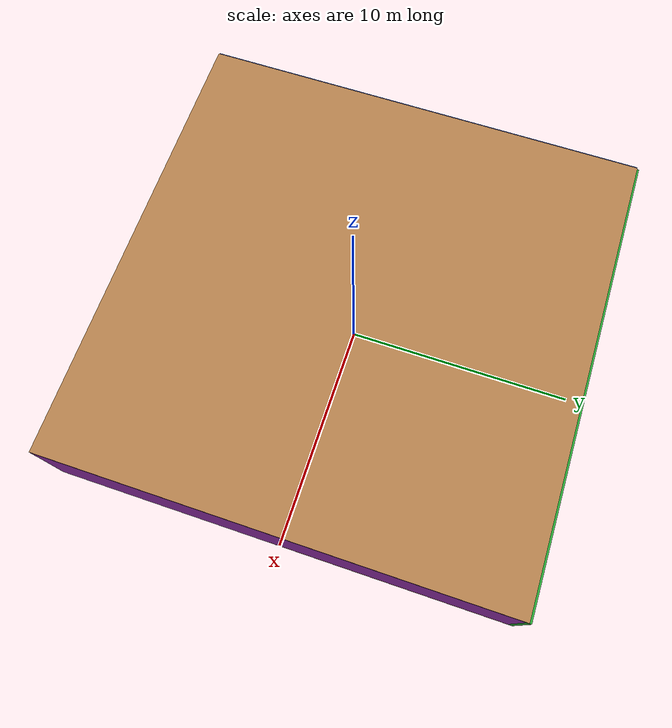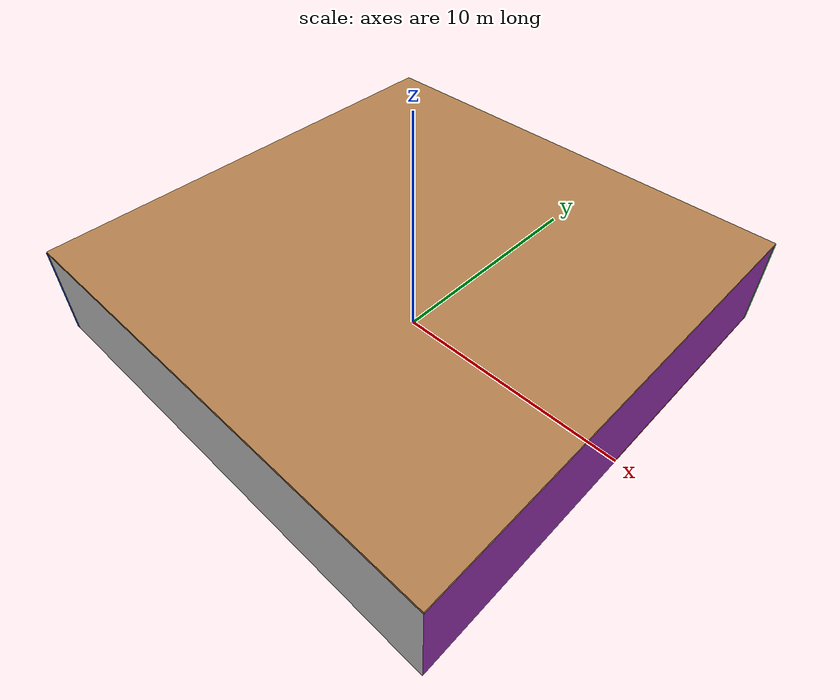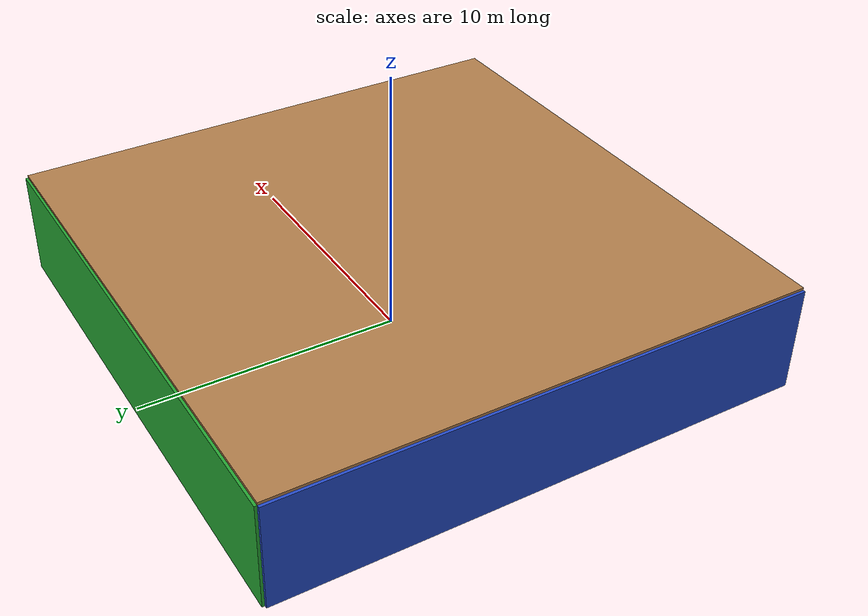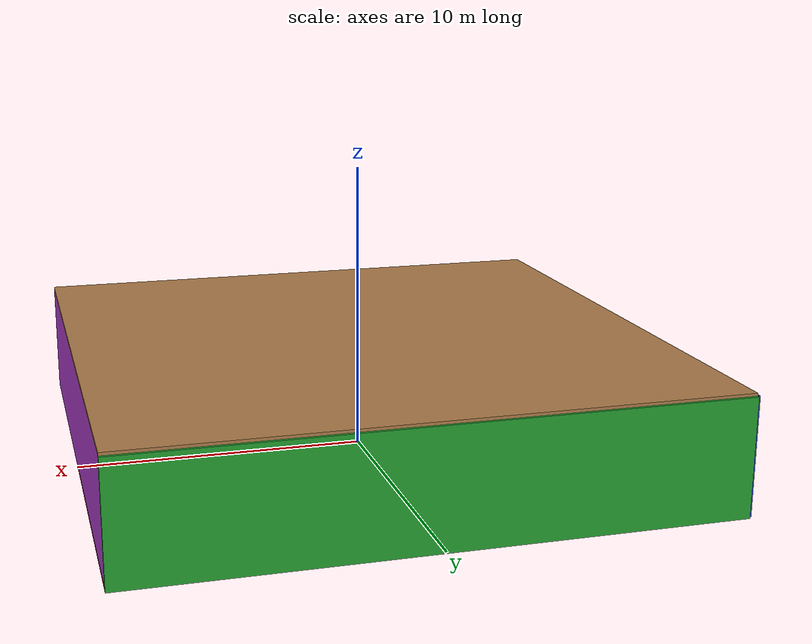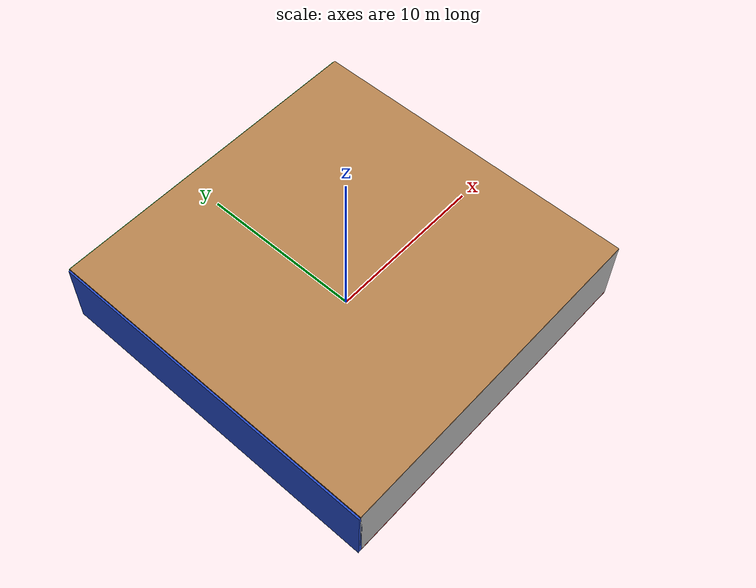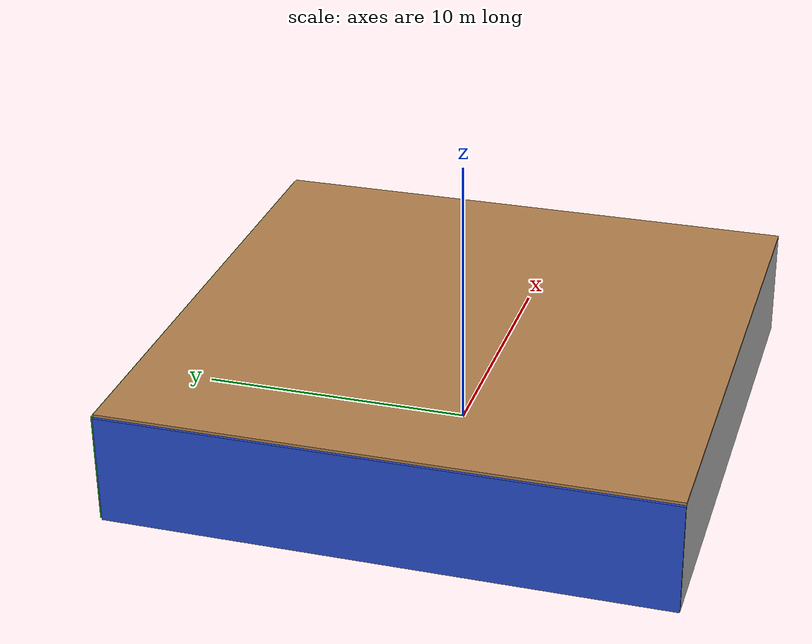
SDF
<sdf version="1.4">
 <world name="default">
  <physics type="ode">
   <max_step_size>0.001</max_step_size>
   <real_time_factor>1</real_time_factor>
   <real_time_update_rate>1000</real_time_update_rate>
   <gravity>0 0 -9.8</gravity>
  </physics>
  <scene><ambient>0.4 0.4 0.4 1</ambient><background>0.7 0.7 0.7 1</background><shadows>1</shadows></scene>
  <model name="Surrounding">
   <static>1</static>
   <link name="Ceiling">
    <collision name="Ceiling_Collision"><geometry><box><size>20 20 0.1</size></box></geometry></collision>
    <visual name="Ceiling_Visual">
     <geometry><box><size>20 20 0.1</size></box></geometry>
     <material>
      <script><uri>file://media/materials/scripts/gazebo.material</uri><name>Gazebo/WoodPallet</name></script>
     </material>
    </visual>
    <pose>0 0 4.05 0 0 0</pose>
   </link>
   <link name="Wall_South">
    <collision name="Wall_South_Collision">
     <geometry><box><size>20 0 4</size></box></geometry>
     <pose>0 0 2 0 -0 0</pose>
    </collision>
    <visual name="Wall_South_Visual">
     <pose>0 0 2 0 -0 0</pose>
     <geometry><box><size>20 0 4</size></box></geometry>
     <material>
      <script><uri>file://media/materials/scripts/gazebo.material</uri><name>Gazebo/Pioneer2Body</name></script>
     </material>
    </visual>
    <velocity_decay><linear>0</linear><angular>0</angular></velocity_decay>
    <pose>0 -10 0 0 -0 0</pose>
   </link>
   <link name="Wall_East">
    <collision name="Wall_21_Collision">
     <geometry><box><size>20 0 4</size></box></geometry>
     <pose>0 0 2 0 -0 0</pose>
    </collision>
    <visual name="Wall_21_Visual">
     <pose>0 0 2 0 -0 0</pose>
     <geometry><box><size>20 0 4</size></box></geometry>
     <material>
      <script><uri>file://media/materials/scripts/gazebo.material</uri><name>Gazebo/Purple</name></script>
     </material>
    </visual>
    <velocity_decay><linear>0</linear><angular>0</angular></velocity_decay>
    <pose>10 0 0 0 -0 1.5708</pose>
   </link>
   <link name="Wall_North">
    <collision name="Wall_22_Collision">
     <geometry><box><size>20 0.2 4</size></box></geometry>
     <pose>0 0 2 0 -0 0</pose>
    </collision>
    <visual name="Wall_22_Visual">
     <pose>0 0 2 0 -0 0</pose>
     <geometry><box><size>20 0.2 4</size></box></geometry>
     <material>
      <script><uri>file://media/materials/scripts/gazebo.material</uri><name>Gazebo/GreenGlow</name></script>
     </material>
    </visual>
    <velocity_decay><linear>0</linear><angular>0</angular></velocity_decay>
    <pose>0 10 0 0 -0 0</pose>
   </link>
   <link name="Wall_West">
    <collision name="Wall_23_Collision">
     <geometry><box><size>20 0.2 4</size></box></geometry>
     <pose>0 0 2 0 -0 0</pose>
    </collision>
    <visual name="Wall_23_Visual">
     <pose>0 0 2 0 -0 0</pose>
     <geometry><box><size>20 0.2 4</size></box></geometry>
     <material>
      <script><uri>file://media/materials/scripts/gazebo.material</uri><name>Gazebo/BlueLaser</name></script>
     </material>
    </visual>
    <velocity_decay><linear>0</linear><angular>0</angular></velocity_decay>
    <pose>-10 0 0 0 0 -1.5708</pose>
   </link>
   <link name="Ground_link">
    <collision name="collision">
     <pose>0 0 .05 0 -0 0</pose>
     <geometry><box><size>20 20 0.1</size></box></geometry>
    </collision>
    <visual name="visual">
     <pose>0 0 .05 0 -0 0</pose>
     <geometry><box><size>20 20 0.1</size></box></geometry>
     <material>
      <script><uri>file://media/materials/scripts/gazebo.material</uri><name>Gazebo/Red</name></script>
     </material>
    </visual>
   </link>
   <static>1</static>
  </model>
  <spherical_coordinates>
   <surface_model>EARTH_WGS84</surface_model>
   <latitude_deg>0</latitude_deg>
   <longitude_deg>0</longitude_deg>
   <elevation>0</elevation>
   <heading_deg>0</heading_deg>
  </spherical_coordinates>
  <light name="lightball_0" type="diffuse">
   <diffuse>0.8 0.8 0.8 1</diffuse>
   <specular>0.2 0.2 0.2 1</specular>
   <attenuation>
    <range>100</range>
    <constant>0.7</constant>
    <linear>0.01</linear>
    <quadratic>0.001</quadratic>
   </attenuation>
   <direction>-0.5 0.1 -0.9</direction>
   <pose>4.89899299603 2.65949119368 0.595149403697 0 0 0</pose>
  </light>
  <light name="lightball_1" type="diffuse">
   <diffuse>0.8 0.8 0.8 1</diffuse>
   <specular>0.2 0.2 0.2 1</specular>
   <attenuation>
    <range>100</range>
    <constant>0.7</constant>
    <linear>0.01</linear>
    <quadratic>0.001</quadratic>
   </attenuation>
   <direction>-0.5 0.1 -0.9</direction>
   <pose>3.43382008483 7.38105279979 1.57064881964 0 0 0</pose>
  </light>
  <light name="lightball_2" type="diffuse">
   <diffuse>0.8 0.8 0.8 1</diffuse>
   <specular>0.2 0.2 0.2 1</specular>
   <attenuation>
    <range>100</range>
    <constant>0.7</constant>
    <linear>0.01</linear>
    <quadratic>0.001</quadratic>
   </attenuation>
   <direction>-0.5 0.1 -0.9</direction>
   <pose>1.0022817653 3.94665449045 2.61427471992 0 0 0</pose>
  </light>
  <light name="lightball_3" type="diffuse">
   <diffuse>0.8 0.8 0.8 1</diffuse>
   <specular>0.2 0.2 0.2 1</specular>
   <attenuation>
    <range>100</range>
    <constant>0.7</constant>
    <linear>0.01</linear>
    <quadratic>0.001</quadratic>
   </attenuation>
   <direction>-0.5 0.1 -0.9</direction>
   <pose>-2.89323906939 -1.01264520983 2.88568186044 0 0 0</pose>
  </light>
  <light name="lightball_4" type="diffuse">
   <diffuse>0.8 0.8 0.8 1</diffuse>
   <specular>0.2 0.2 0.2 1</specular>
   <attenuation>
    <range>100</range>
    <constant>0.7</constant>
    <linear>0.01</linear>
    <quadratic>0.001</quadratic>
   </attenuation>
   <direction>-0.5 0.1 -0.9</direction>
   <pose>-6.73598249933 8.19278297204 1.30346665287 0 0 0</pose>
  </light>
  <light name="lightball_5" type="diffuse">
   <diffuse>0.8 0.8 0.8 1</diffuse>
   <specular>0.2 0.2 0.2 1</specular>
   <attenuation>
    <range>100</range>
    <constant>0.7</constant>
    <linear>0.01</linear>
    <quadratic>0.001</quadratic>
   </attenuation>
   <direction>-0.5 0.1 -0.9</direction>
   <pose>4.68091802446 8.53777494654 1.65088314963 0 0 0</pose>
  </light>
  <light name="lightball_6" type="diffuse">
   <diffuse>0.8 0.8 0.8 1</diffuse>
   <specular>0.2 0.2 0.2 1</specular>
   <attenuation>
    <range>100</range>
    <constant>0.7</constant>
    <linear>0.01</linear>
    <quadratic>0.001</quadratic>
   </attenuation>
   <direction>-0.5 0.1 -0.9</direction>
   <pose>7.71768630019 -6.00519348742 3.85108986525 0 0 0</pose>
  </light>
  <light name="lightball_7" type="diffuse">
   <diffuse>0.8 0.8 0.8 1</diffuse>
   <specular>0.2 0.2 0.2 1</specular>
   <attenuation>
    <range>100</range>
    <constant>0.7</constant>
    <linear>0.01</linear>
    <quadratic>0.001</quadratic>
   </attenuation>
   <direction>-0.5 0.1 -0.9</direction>
   <pose>-1.43614112374 -3.68026573559 3.13497224321 0 0 0</pose>
  </light>
  <light name="lightball_8" type="diffuse">
   <diffuse>0.8 0.8 0.8 1</diffuse>
   <specular>0.2 0.2 0.2 1</specular>
   <attenuation>
    <range>100</range>
    <constant>0.7</constant>
    <linear>0.01</linear>
    <quadratic>0.001</quadratic>
   </attenuation>
   <direction>-0.5 0.1 -0.9</direction>
   <pose>6.28220543655 8.36033797385 2.56454316156 0 0 0</pose>
  </light>
  <include>
   <uri>model://textured_shapes</uri>
   <pose>-7.31955121466 -2.55430370265 0 0 0 1.8609285897</pose>
  </include>
  <include>
   <uri>model://textured_shapes</uri>
   <pose>-4.28955150467 -5.15498729726 0 0 0 1.71165159326</pose>
  </include>
  <include><uri>model://cabinet</uri><pose>-4.14579762081 4.51087385185 0 0 0 2.34077055328</pose></include>
  <include>
   <uri>model://robocup_3Dsim_goal</uri>
   <pose>2.50358523389 1.99485977518 0 0 0 0.553153514138</pose>
  </include>
  <include><uri>model://cabinet</uri><pose>7.55019616918 -3.5343867268 0 0 0 2.70430512579</pose></include>
 </world>
</sdf>

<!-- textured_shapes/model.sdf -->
<sdf version="1.6">
  <model name="textured_shapes">
    <pose>0 0 0.5 0 0 0</pose>
    <link name="box">
      <pose>0 -1.5 0 0 0 0</pose>
      <collision name="collision">
        <geometry>
          <box>
            <size>1 1 1</size>
          </box>
        </geometry>
      </collision>
      <visual name="visual">
        <geometry>
          <box>
            <size>1 1 1</size>
          </box>
        </geometry>
        <material>
          <script>
            <uri>model://../model_source/models/textured_shapes/materials/scripts</uri>
            <uri>model://../model_source/models/textured_shapes/materials/textures</uri>
            <name>TexturedShape/Squares</name>
          </script>
        </material>
      </visual>
    </link>
    <link name="sphere">
      <collision name="collision">
        <geometry>
          <sphere>
            <radius>0.5</radius>
          </sphere>
        </geometry>
      </collision>
      <visual name="visual">
        <geometry>
          <sphere>
            <radius>0.5</radius>
          </sphere>
        </geometry>
        <material>
          <script>
            <uri>model://../model_source/models/textured_shapes/materials/scripts</uri>
            <uri>model://../model_source/models/textured_shapes/materials/textures</uri>
            <name>TexturedShape/Squares</name>
          </script>
        </material>
      </visual>
    </link>
    <link name="cylinder">
      <pose>0 1.5 0 0 0 0</pose>
      <collision name="collision">
        <geometry>
          <cylinder>
            <radius>0.5</radius>
            <length>1</length>
          </cylinder>
        </geometry>
      </collision>
      <visual name="visual">
        <geometry>
          <cylinder>
            <radius>0.5</radius>
            <length>1</length>
          </cylinder>
        </geometry>
        <material>
          <script>
            <uri>model://../model_source/models/textured_shapes/materials/scripts</uri>
            <uri>model://../model_source/models/textured_shapes/materials/textures</uri>
            <name>TexturedShape/Squares</name>
          </script>
        </material>
      </visual>
    </link>
  </model>
</sdf>

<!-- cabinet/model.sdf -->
<sdf version="1.5">
  <model name="cabinet">
    <static>true</static>
    <link name="cabinet_bottom_plate">
      <inertial>
        <pose>0 0 -1 0 0 0</pose>
        <inertia>
          <ixx>2.050000</ixx>
          <ixy>0</ixy>
          <ixz>0</ixz>
          <iyy>2.050000</iyy>
          <iyz>0</iyz>
          <izz>2.050000</izz>
        </inertia>
        <mass>25.000000</mass>
      </inertial>
      <collision name="cabinet_bottom_plate_geom">
        <pose>0 0 0.010000 0 0 0</pose>
        <geometry>
          <box>
            <size>0.450000 0.450000 0.020000</size>
          </box>
        </geometry>
      </collision>
      <visual name="cabinet_bottom_plate_geom_visual">
        <pose>0 0 0.010000 0 0 0</pose>
        <geometry>
          <box>
            <size>0.450000 0.450000 0.020000</size>
          </box>
        </geometry>
        <material>
          <script>
            <uri>model://media/materials/scripts/gazebo.material</uri>
            <name>Gazebo/Wood</name>
          </script>
        </material>
      </visual>
      <collision name="cabinet_bottom_plate_geom_cabinet_back_plate">
        <pose>0.235000 0 0.510000 0 0 0</pose>
        <geometry>
          <box>
            <size>0.020000 0.450000 1.020000</size>
          </box>
        </geometry>
      </collision>
      <visual name="cabinet_bottom_plate_geom_cabinet_back_plate_visual">
        <pose>0.235000 0 0.510000 0 0 0</pose>
        <geometry>
          <box>
            <size>0.020000 0.450000 1.020000</size>
          </box>
        </geometry>
        <material>
          <script>
            <uri>model://media/materials/scripts/gazebo.material</uri>
            <name>Gazebo/Wood</name>
          </script>
        </material>
      </visual>
      <collision name="cabinet_bottom_plate_geom_cabinet_left_plate">
        <pose>0 0.235000 0.510000 0 0 0</pose>
        <geometry>
          <box>
            <size>0.450000 0.020000 1.020000</size>
          </box>
        </geometry>
      </collision>
      <visual name="cabinet_bottom_plate_geom_cabinet_left_plate_visual">
        <pose>0 0.235000 0.510000 0 0 0</pose>
        <geometry>
          <box>
            <size>0.450000 0.020000 1.020000</size>
          </box>
        </geometry>
        <material>
          <script>
            <uri>model://media/materials/scripts/gazebo.material</uri>
            <name>Gazebo/Wood</name>
          </script>
        </material>
      </visual>
      <collision name="cabinet_bottom_plate_geom_cabinet_middle_plate">
        <pose>0 0 0.510000 0 0 0</pose>
        <geometry>
          <box>
            <size>0.450000 0.450000 0.020000</size>
          </box>
        </geometry>
      </collision>
      <visual name="cabinet_bottom_plate_geom_cabinet_middle_plate_visual">
        <pose>0 0 0.510000 0 0 0</pose>
        <geometry>
          <box>
            <size>0.450000 0.450000 0.020000</size>
          </box>
        </geometry>
        <material>
          <script>
            <uri>model://media/materials/scripts/gazebo.material</uri>
            <name>Gazebo/Wood</name>
          </script>
        </material>
      </visual>
      <collision name="cabinet_bottom_plate_geom_cabinet_right_plate">
        <pose>0 -0.235000 0.510000 0 0 0</pose>
        <geometry>
          <box>
            <size>0.450000 0.020000 1.020000</size>
          </box>
        </geometry>
      </collision>
      <visual name="cabinet_bottom_plate_geom_cabinet_right_plate_visual">
        <pose>0 -0.235000 0.510000 0 0 0</pose>
        <geometry>
          <box>
            <size>0.450000 0.020000 1.020000</size>
          </box>
        </geometry>
        <material>
          <script>
            <uri>model://media/materials/scripts/gazebo.material</uri>
            <name>Gazebo/Wood</name>
          </script>
        </material>
      </visual>
      <collision name="cabinet_bottom_plate_geom_cabinet_top_plate">
        <pose>0 0 1.010000 0 0 0</pose>
        <geometry>
          <box>
            <size>0.450000 0.450000 0.020000</size>
          </box>
        </geometry>
      </collision>
      <visual name="cabinet_bottom_plate_geom_cabinet_top_plate_visual">
        <pose>0 0 1.010000 0 0 0</pose>
        <geometry>
          <box>
            <size>0.450000 0.450000 0.020000</size>
          </box>
        </geometry>
        <material>
          <script>
            <uri>model://media/materials/scripts/gazebo.material</uri>
            <name>Gazebo/Wood</name>
          </script>
        </material>
      </visual>
    </link>
  </model>
</sdf>

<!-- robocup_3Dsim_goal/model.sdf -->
<sdf version="1.5">
  <model name="robocup_3d_goal">
    <static>true</static>
    <link name="left_post">
      <pose>0 1.05 0.45 0 0 0</pose>
      <collision name="collision">
        <geometry>
          <cylinder>
            <radius>0.05</radius>
            <length>0.9</length>
          </cylinder>
        </geometry>
      </collision>
      <visual name="visual">
        <geometry>
          <cylinder>
            <radius>0.05</radius>
            <length>0.9</length>
          </cylinder>
        </geometry>
        <material>
          <script>
            <uri>file://media/materials/scripts/gazebo.material</uri>
            <name>Gazebo/ZincYellow</name>
          </script>
        </material>
      </visual>
    </link>
    <link name="left_support_horiz_lower">
      <pose>0.30 1.05 0.01 0 0 0</pose>
      <collision name="collision">
        <geometry>
          <box>
            <size>0.50 0.02 0.02</size>
          </box>
        </geometry>
      </collision>
      <visual name="visual">
        <geometry>
          <box>
            <size>0.50 0.02 0.02</size>
          </box>
        </geometry>
        <material>
          <script>
            <uri>file://media/materials/scripts/gazebo.material</uri>
            <name>Gazebo/White</name>
          </script>
        </material>
      </visual>
    </link>
    <link name="left_support_horiz_upper">
      <pose>0.30 1.05 0.79 0 0 0</pose>
      <collision name="collision">
        <geometry>
          <box>
            <size>0.50 0.02 0.02</size>
          </box>
        </geometry>
      </collision>
      <visual name="visual">
        <geometry>
          <box>
            <size>0.50 0.02 0.02</size>
          </box>
        </geometry>
        <material>
          <script>
            <uri>file://media/materials/scripts/gazebo.material</uri>
            <name>Gazebo/White</name>
          </script>
        </material>
      </visual>
    </link>
    <link name="left_support_vertical">
      <pose>0.56 1.05 0.4 0 1.5708 0</pose>
      <collision name="collision">
        <geometry>
          <box>
            <size>0.80 0.02 0.02</size>
          </box>
        </geometry>
      </collision>
      <visual name="visual">
        <geometry>
          <box>
            <size>0.80 0.02 0.02</size>
          </box>
        </geometry>
        <material>
          <script>
            <uri>file://media/materials/scripts/gazebo.material</uri>
            <name>Gazebo/White</name>
          </script>
        </material>
      </visual>
    </link>
    <link name="right_support_horiz_lower">
      <pose>0.30 -1.05 0.01 0 0 0</pose>
      <collision name="collision">
        <geometry>
          <box>
            <size>0.50 0.02 0.02</size>
          </box>
        </geometry>
      </collision>
      <visual name="visual">
        <geometry>
          <box>
            <size>0.50 0.02 0.02</size>
          </box>
        </geometry>
        <material>
          <script>
            <uri>file://media/materials/scripts/gazebo.material</uri>
            <name>Gazebo/White</name>
          </script>
        </material>
      </visual>
    </link>
    <link name="right_support_horiz_upper">
      <pose>0.30 -1.05 0.79 0 0 0</pose>
      <collision name="collision">
        <geometry>
          <box>
            <size>0.50 0.02 0.02</size>
          </box>
        </geometry>
      </collision>
      <visual name="visual">
        <geometry>
          <box>
            <size>0.50 0.02 0.02</size>
          </box>
        </geometry>
        <material>
          <script>
            <uri>file://media/materials/scripts/gazebo.material</uri>
            <name>Gazebo/White</name>
          </script>
        </material>
      </visual>
    </link>
    <link name="right_support_vertical">
      <pose>0.56 -1.05 0.4 0 1.5708 0</pose>
      <collision name="collision">
        <geometry>
          <box>
            <size>0.80 0.02 0.02</size>
          </box>
        </geometry>
      </collision>
      <visual name="visual">
        <geometry>
          <box>
            <size>0.80 0.02 0.02</size>
          </box>
        </geometry>
        <material>
          <script>
            <uri>file://media/materials/scripts/gazebo.material</uri>
            <name>Gazebo/White</name>
          </script>
        </material>
      </visual>
    </link>
    <link name="center_support_horiz_lower">
      <pose>0.56 0 0.01 0 1.5708 0</pose>
      <collision name="collision">
        <geometry>
          <box>
            <size>0.02 2.08 0.02</size>
          </box>
        </geometry>
      </collision>
      <visual name="visual">
        <geometry>
          <box>
            <size>0.02 2.08 0.02</size>
          </box>
        </geometry>
        <material>
          <script>
            <uri>file://media/materials/scripts/gazebo.material</uri>
            <name>Gazebo/White</name>
          </script>
        </material>
      </visual>
    </link>
    <link name="center_support_horiz_upper">
      <pose>0.56 0 0.79 0 1.5708 0</pose>
      <collision name="collision">
        <geometry>
          <box>
            <size>0.02 2.08 0.02</size>
          </box>
        </geometry>
      </collision>
      <visual name="visual">
        <geometry>
          <box>
            <size>0.02 2.08 0.02</size>
          </box>
        </geometry>
        <material>
          <script>
            <uri>file://media/materials/scripts/gazebo.material</uri>
            <name>Gazebo/White</name>
          </script>
        </material>
      </visual>
    </link>
    <link name="right_post">
      <pose>0 -1.05 0.45 0 0 0</pose>
      <collision name="collision">
        <geometry>
          <cylinder>
            <radius>0.05</radius>
            <length>0.9</length>
          </cylinder>
        </geometry>
      </collision>
      <visual name="visual">
        <geometry>
          <cylinder>
            <radius>0.05</radius>
            <length>0.9</length>
          </cylinder>
        </geometry>
        <material>
          <script>
            <uri>file://media/materials/scripts/gazebo.material</uri>
            <name>Gazebo/ZincYellow</name>
          </script>
        </material>
      </visual>
    </link>
    <link name="crossbar">
      <pose>0 0 0.85 1.57 1.57 0</pose>
      <collision name="collision">
        <geometry>
          <cylinder>
            <radius>0.05</radius>
            <length>2.0</length>
          </cylinder>
        </geometry>
      </collision>
      <visual name="visual">
        <geometry>
          <cylinder>
            <radius>0.05</radius>
            <length>2.0</length>
          </cylinder>
        </geometry>
        <material>
          <script>
            <uri>file://media/materials/scripts/gazebo.material</uri>
            <name>Gazebo/ZincYellow</name>
          </script>
        </material>
      </visual>
    </link>
    <link name="center_net">
      <pose>0.56 0 0.40 0 0 0</pose>
      <collision name="collision">
        <geometry>
          <box>
            <size>0.01 2.1 0.80</size>
          </box>
        </geometry>
      </collision>
      <visual name="visual">
        <geometry>
          <box>
            <size>0.01 2.1 0.80</size>
          </box>
        </geometry>
        <material>
          <script>
            <uri>model://../model_source/models/robocup09_spl_field/materials/scripts/</uri>
            <uri>model://../model_source/models/robocup09_spl_field/materials/textures/</uri>
            <name>RoboCup/Net</name>
          </script>
        </material>
      </visual>
    </link>
    <link name="left_net">
      <pose>0.30 1.05 0.40 0 0 0</pose>
      <collision name="collision">
        <geometry>
          <box>
            <size>0.50 0.01 0.76</size>
          </box>
        </geometry>
      </collision>
      <visual name="visual">
        <geometry>
          <box>
            <size>0.50 0.01 0.76</size>
          </box>
        </geometry>
        <material>
          <script>
            <uri>model://../model_source/models/robocup09_spl_field/materials/scripts/</uri>
            <uri>model://../model_source/models/robocup09_spl_field/materials/textures/</uri>
            <name>RoboCup/Net</name>
          </script>
        </material>
      </visual>
    </link>
    <link name="right_net">
      <pose>0.30 -1.05 0.40 0 0 0</pose>
      <collision name="collision">
        <geometry>
          <box>
            <size>0.50 0.01 0.76</size>
          </box>
        </geometry>
      </collision>
      <visual name="visual">
        <geometry>
          <box>
            <size>0.50 0.01 0.76</size>
          </box>
        </geometry>
        <material>
          <script>
            <uri>model://../model_source/models/robocup09_spl_field/materials/scripts/</uri>
            <uri>model://../model_source/models/robocup09_spl_field/materials/textures/</uri>
            <name>RoboCup/Net</name>
          </script>
        </material>
      </visual>
    </link>
  </model>
</sdf>
